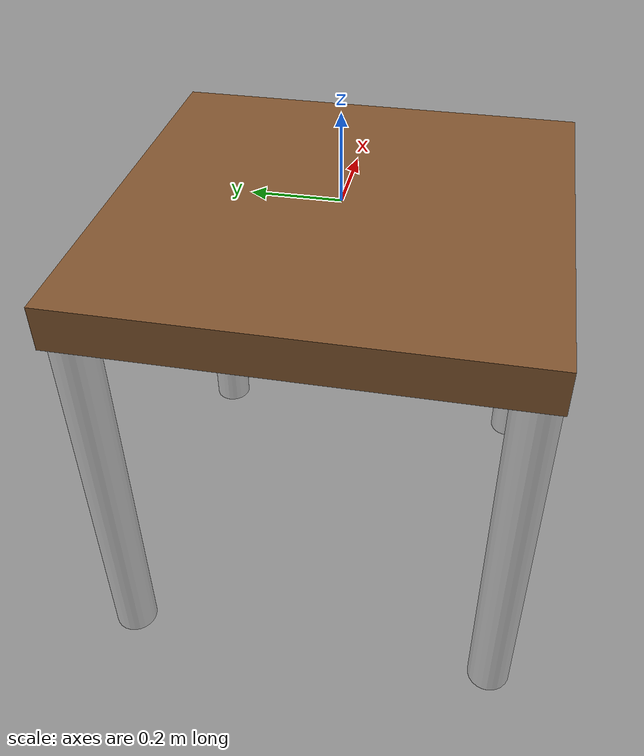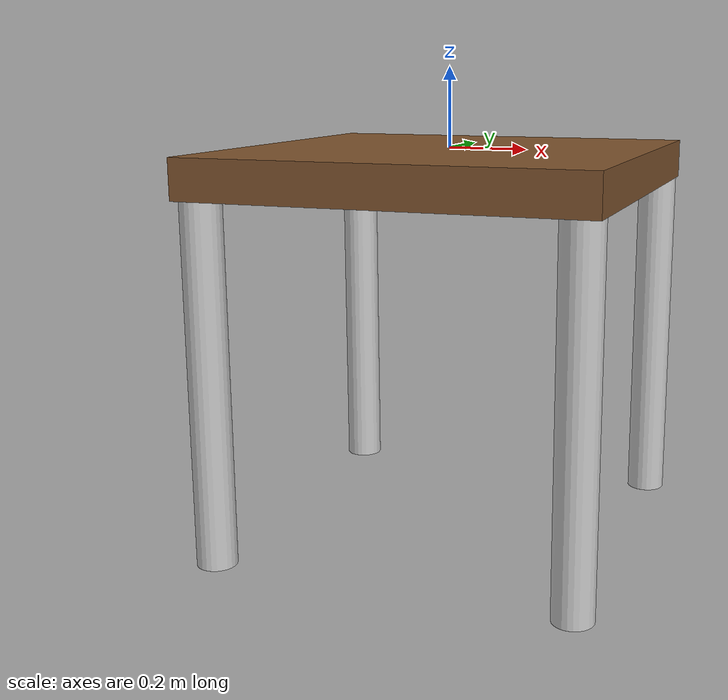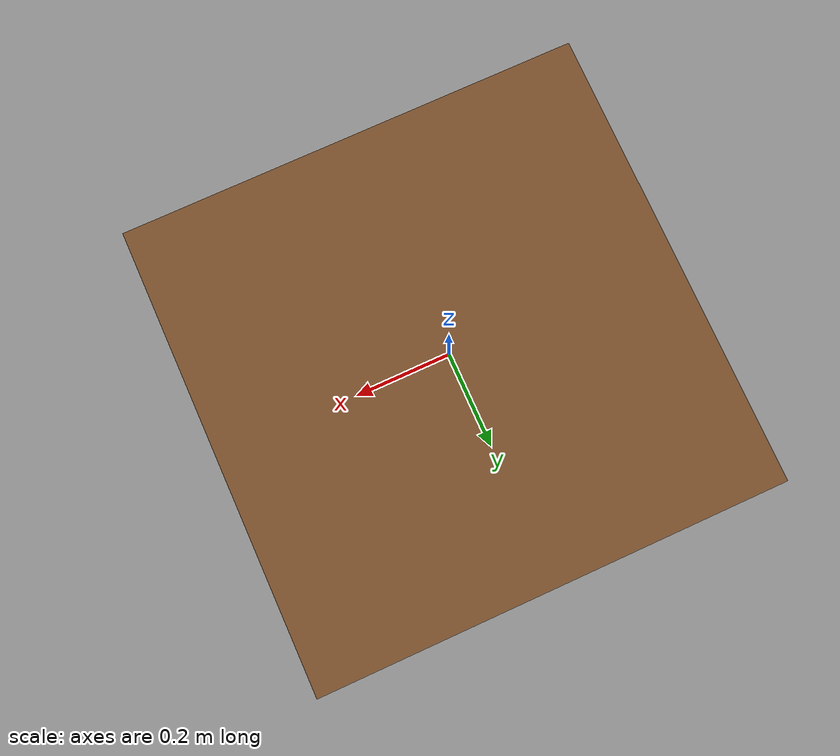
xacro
<?xml version="1.0" encoding="UTF-8"?>
<robot xmlns:xacro="http://wiki.ros.org/xacro" name="rrbot">

  <xacro:include filename="materials.xacro" />
  <xacro:include filename="table_macro.xacro"/>

  <link name="world" />

  <xacro:table prefix="table1_" parent="world">
    <origin xyz="0 0 0" rpy="0 0 0" />
  </xacro:table>

</robot>

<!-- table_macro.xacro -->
<robot xmlns:xacro="http://www.ros.org/wiki/xacro">

  <xacro:macro name="table" params="prefix parent *origin">

    <!-- Constants for robot dimensions -->
    <xacro:property name="table_length" value="1" />
    <xacro:property name="table_width" value="1" />
    <xacro:property name="table_height" value="1" />
    <xacro:property name="table_thickness" value="0.1" />
    <xacro:property name="leg_length" value="${table_height - table_thickness}" />
    <xacro:property name="leg_radius" value="0.05" />

    <!-- base -> top -->
    <link name="${prefix}top">
        <visual>
            <origin rpy="0 0 0" xyz="0 0 ${-table_thickness/2}" />
            <geometry>
                <box size="${table_length} ${table_width} ${table_thickness}" />
            </geometry>
            <material name="brown" />
        </visual>
    </link>

    <joint name="${prefix}base_joint" type="fixed">
        <xacro:insert_block name="origin" />
        <parent link="${parent}" />
        <child link="${prefix}top" />
    </joint>

    <!-- leg joints -->

    <joint name="${prefix}leg1_joint" type="fixed">
        <origin rpy="0 0 0" xyz="${ table_length/2-leg_radius} ${ table_width/2-leg_radius} ${-table_thickness}"/>
        <parent link="${prefix}top" />
        <child link="${prefix}leg1" />
    </joint>

    <joint name="${prefix}leg2_joint" type="fixed">
        <origin rpy="0 0 0" xyz="${ table_length/2-leg_radius} ${ -(table_width/2-leg_radius)} ${-table_thickness}"/>
        <parent link="${prefix}top" />
        <child link="${prefix}leg2" />
    </joint>

    <joint name="${prefix}leg3_joint" type="fixed">
        <origin rpy="0 0 0" xyz="${ -(table_length/2-leg_radius)} ${ -(table_width/2-leg_radius)} ${-table_thickness}"/>
        <parent link="${prefix}top" />
        <child link="${prefix}leg3" />
    </joint>

    <joint name="${prefix}leg4_joint" type="fixed">
        <origin rpy="0 0 0" xyz="${ -(table_length/2-leg_radius)} ${ table_width/2-leg_radius} ${-table_thickness}"/>
        <parent link="${prefix}top" />
        <child link="${prefix}leg4" />
    </joint>

    <!-- leg links -->

    <link name="${prefix}leg1">
        <visual>
            <origin rpy="0 0 0" xyz="0 0 ${-leg_length / 2}"/>
            <geometry>
                <cylinder radius="${leg_radius}" length="${leg_length}"/>
            </geometry>
            <material name="light_grey"/>
        </visual>
    </link>

    <link name="${prefix}leg2">
        <visual>
            <origin rpy="0 0 0" xyz="0 0 ${-leg_length / 2}"/>
            <geometry>
                <cylinder radius="${leg_radius}" length="${leg_length}"/>
            </geometry>
            <material name="light_grey"/>
        </visual>
    </link>

    <link name="${prefix}leg3">
        <visual>
            <origin rpy="0 0 0" xyz="0 0 ${-leg_length / 2}"/>
            <geometry>
                <cylinder radius="${leg_radius}" length="${leg_length}"/>
            </geometry>
            <material name="light_grey"/>
        </visual>
    </link>

    <link name="${prefix}leg4">
        <visual>
            <origin rpy="0 0 0" xyz="0 0 ${-leg_length / 2}"/>
            <geometry>
                <cylinder radius="${leg_radius}" length="${leg_length}"/>
            </geometry>
            <material name="light_grey"/>
        </visual>
    </link>

  </xacro:macro>

</robot>
